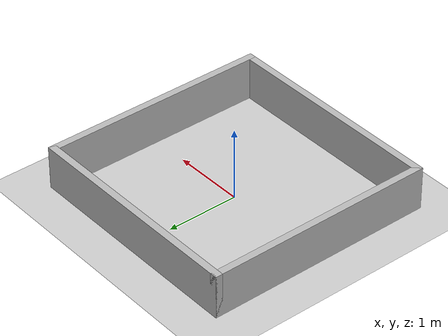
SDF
<sdf version="1.9"><world name="ros_expert">
      <physics name="physics" type="ignored"><max_step_size>0.01</max_step_size><real_time_factor>1</real_time_factor></physics>
      <plugin filename="gz-sim-physics-system" name="gz::sim::systems::Physics"/>
      <plugin filename="gz-sim-user-commands-system" name="gz::sim::systems::UserCommands"/>
      <plugin filename="gz-sim-scene-broadcaster-system" name="gz::sim::systems::SceneBroadcaster"/>
      <plugin filename="gz-sim-sensors-system" name="gz::sim::systems::Sensors"><render_engine>ogre2</render_engine></plugin>
      <plugin filename="gz-sim-imu-system" name="gz::sim::systems::Imu"/>
      <plugin filename="gz-sim-contact-system" name="gz::sim::systems::Contact"/>
      <light name="sun" type="directional"><pose>0 0 10 0 0 0</pose><direction>-0.5 0.1 -0.9</direction></light>
      <model name="floor"><static>true</static><link name="ground"><collision name="ground"><geometry><plane><normal>0 0 1</normal><size>20 20</size></plane></geometry></collision><visual name="ground"><geometry><plane><normal>0 0 1</normal><size>20 20</size></plane></geometry></visual></link></model><model name="east"><static>true</static><pose>1.55 0 0.3 0 0 0</pose><link name="wall"><collision name="wall"><geometry><box><size>0.1 3.2 0.6</size></box></geometry></collision><visual name="wall"><geometry><box><size>0.1 3.2 0.6</size></box></geometry></visual></link></model><model name="west"><static>true</static><pose>-1.55 0 0.3 0 0 0</pose><link name="wall"><collision name="wall"><geometry><box><size>0.1 3.2 0.6</size></box></geometry></collision><visual name="wall"><geometry><box><size>0.1 3.2 0.6</size></box></geometry></visual></link></model><model name="north"><static>true</static><pose>0 1.55 0.3 0 0 0</pose><link name="wall"><collision name="wall"><geometry><box><size>3.2 0.1 0.6</size></box></geometry></collision><visual name="wall"><geometry><box><size>3.2 0.1 0.6</size></box></geometry></visual></link></model><model name="south"><static>true</static><pose>0 -1.55 0.3 0 0 0</pose><link name="wall"><collision name="wall"><geometry><box><size>3.2 0.1 0.6</size></box></geometry></collision><visual name="wall"><geometry><box><size>3.2 0.1 0.6</size></box></geometry></visual></link></model></world></sdf>
